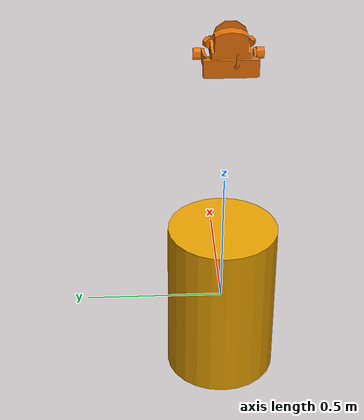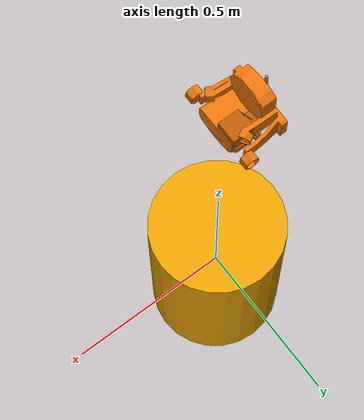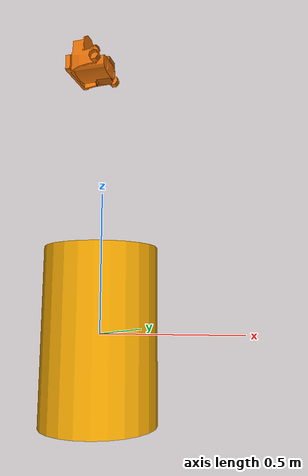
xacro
<?xml version="1.0"?>

<robot xmlns:xacro="http://www.ros.org/wiki/xacro" name="myfirst">

  <xacro:include filename="$(find multisense_description)/urdf/multisenseSL/importable.urdf.xacro"/>

  <link name="base_link">
    <visual>
      <geometry>
        <cylinder length="0.6" radius="0.2"/>
      </geometry>
    </visual>
  </link>

  <xacro:importable_multisenseSL name="multisense" parent="base_link">
    <origin xyz="0 0 1" rpy="0 0 0"/>
  </xacro:importable_multisenseSL>

</robot>

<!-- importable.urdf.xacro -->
<robot xmlns:xacro="http://ros.org/wiki/xacro">
  <xacro:include filename="$(find multisense_description)/urdf/multisenseSL/multisenseSL.urdf.xacro"/>

  <xacro:macro name="importable_multisenseSL" params="parent name *origin">

    <!-- Joint for connection to parent -->
    <joint name="${name}_head_root_joint" type="fixed">
      <insert_block name="origin"/>
      <parent link="${parent}"/>
      <child link="${name}/head"/>
    </joint>

    <xacro:multisenseSL name="${name}" />

  </xacro:macro>
</robot>

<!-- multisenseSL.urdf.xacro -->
<robot xmlns:xacro="http://ros.org/wiki/xacro">
  <xacro:macro name="multisenseSL" params="name">

    <!-- Head Link Simplified Collision Mesh -->
    <link name="${name}/head">
      <inertial>
        <origin xyz="-0.075493 3.3383E-05 0.02774" rpy="0 0 0" />
        <mass value="1.4199" />
        <inertia iyy="0.0041178" ixy="-1.5797E-06" iyz="-6.8415E-07" ixx="0.0039688" ixz="-0.00089293" izz="0.0035243" />
      </inertial>
      <visual>
        <origin xyz="0 0  0" rpy="0 0 0" />
        <geometry>
            <mesh filename="package://multisense_description/meshes/head.dae" />
        </geometry>
        <material name="">
          <color rgba="0.9098 0.44314 0.031373 1" />
        </material>
      </visual>
    <collision>
      <origin xyz="-0.0503 0 -0.00195" rpy="0 0 0" />
      <geometry>
        <box size="0.1311 0.12 0.0591"/>
      </geometry>
    </collision>
    </link>

    <joint name="${name}/left_camera_optical_joint" type="continuous">
      <parent link="${name}/left_camera_optical_frame" />
      <child link="${name}/motor" />
    </joint>

    <link name="${name}/motor"/>
    <link name="${name}/spindle"/>

    <joint name="${name}/motor_joint" type="continuous">
      <parent link="${name}/motor" />
      <child link="${name}/spindle" />
      <axis xyz="0 0 1" />
    </joint>

    <joint name="${name}/spindle_joint" type="continuous">
      <parent link="${name}/spindle" />
      <child link="${name}/hokuyo_link" />
    </joint>

    <link name="${name}/hokuyo_link">
      <inertial>
        <origin xyz="0.012428 0.0004084 -0.0041835" rpy="0 0 0" />
        <mass value="0.057664" />
        <inertia iyy="4.2412E-05" ixy="4.9927E-08" iyz="-9.8165E-09" ixx="3.7174E-05" ixz="1.1015E-05" izz="4.167E-05" />
      </inertial>
      <visual>
        <origin xyz="-.03 -.1 0" rpy="-1.9179632679 -1.57079632679 0" />
        <geometry>
          <mesh filename="package://multisense_description/meshes/head_camera.dae" />
        </geometry>
        <material name="">
          <color rgba="0.72941 0.35686 0.023529 1" />
        </material>
      </visual>
    <collision>
      <origin xyz="0.03 0 0.0235" rpy="0 0 0" />
      <geometry>
        <cylinder radius="0.024425" length="0.047"/>
      </geometry>
    </collision>
    </link>

    <link name="${name}/head_hokuyo_frame"/>
    <joint name="${name}/head_hokuyo_frame_joint" type="fixed">
      <origin xyz="0 0 0" rpy="-1.57079632679 -1.57079632679 0.0" />
      <parent link="${name}/hokuyo_link" />
      <child link="${name}/head_hokuyo_frame"/>
    </joint>

    <!-- Stereo Camera -->
    <joint name="${name}/left_camera_frame_joint" type="fixed">
      <!-- optical frame collocated with tilting DOF -->
      <origin xyz="0.0 0.035 -0.002"/>
      <parent link="${name}/head"/>
      <child link="${name}/left_camera_frame"/>
    </joint>
    <link name="${name}/left_camera_frame">
      <inertial>
        <mass value="0.1" />
        <origin xyz="0 0 0" />
        <inertia ixx="0.001"  ixy="0.0"  ixz="0.0" iyy="0.001"  iyz="0.0" izz="0.001" />
      </inertial>
    </link>
    <joint name="${name}/left_camera_optical_frame_joint" type="fixed">
      <origin xyz="0 0 0" rpy="-1.57079632679 0.0 -1.57079632679" />
      <parent link="${name}/left_camera_frame" />
      <child link="${name}/left_camera_optical_frame"/>
    </joint>
    <link name="${name}/left_camera_optical_frame"/>

    <joint name="${name}/right_camera_frame_joint" type="fixed">
      <origin xyz="0.0 -0.035 -0.002"/>
      <parent link="${name}/head"/>
      <child link="${name}/right_camera_frame"/>
    </joint>
    <link name="${name}/right_camera_frame">
      <inertial>
        <mass value="0.1" />
        <origin xyz="0 0 0" />
        <inertia ixx="0.001"  ixy="0.0"  ixz="0.0" iyy="0.001"  iyz="0.0" izz="0.001" />
      </inertial>
    </link>
    <joint name="${name}/right_camera_optical_frame_joint" type="fixed">
      <origin xyz="0 0 0" rpy="-1.5708 0.0 -1.5708" />
      <parent link="${name}/right_camera_frame" />
      <child link="${name}/right_camera_optical_frame"/>
    </joint>
    <link name="${name}/right_camera_optical_frame"/>

    <joint name="${name}/center_top_led_frame_joint" type="fixed">
      <origin xyz="0.01125 0.0 0.0105"/>
      <parent link="${name}/head"/>
      <child link="${name}/center_top_led_frame"/>
    </joint>
    <link name="${name}/center_top_led_frame">
      <inertial>
        <mass value="0.1"/>
        <origin xyz="0 0 0"/>
        <inertia ixx="0.001" ixy="0.0" ixz="0.0" iyy="0.001" iyz="0.0" izz="0.001"/>
      </inertial>
    </link>
    <joint name="${name}/center_bottom_led_frame_joint" type="fixed">
      <origin xyz="0.01125 0.0 -0.0155"/>
      <parent link="${name}/head"/>
      <child link="${name}/center_bottom_led_frame"/>
    </joint>
    <link name="${name}/center_bottom_led_frame">
      <inertial>
        <mass value="0.1"/>
        <origin xyz="0 0 0"/>
        <inertia ixx="0.001" ixy="0.0" ixz="0.0" iyy="0.001" iyz="0.0" izz="0.001"/>
      </inertial>
    </link>
    <joint name="${name}/left_led_frame_joint" type="fixed">
      <origin xyz="-0.01443 0.07452 0.050346" rpy="0 -0.15 0.53"/>
      <parent link="${name}/head"/>
      <child link="${name}/left_led_frame"/>
    </joint>
    <link name="${name}/left_led_frame">
      <inertial>
        <mass value="0.1"/>
        <origin xyz="0 0 0"/>
        <inertia ixx="0.001" ixy="0.0" ixz="0.0" iyy="0.001" iyz="0.0" izz="0.001"/>
      </inertial>
    </link>
    <joint name="${name}/right_led_frame_joint" type="fixed">
      <origin xyz="-0.01443 -0.07452 0.050346" rpy="0 -0.15 -0.53"/>
      <parent link="${name}/head"/>
      <child link="${name}/right_led_frame"/>
    </joint>
    <link name="${name}/right_led_frame">
      <inertial>
        <mass value="0.1"/>
        <origin xyz="0 0 0"/>
        <inertia ixx="0.001" ixy="0.0" ixz="0.0" iyy="0.001" iyz="0.0" izz="0.001"/>
      </inertial>
    </link>

    <!-- IMU Frames, Mag/Accel and Gyro -->
    <!-- Include transfrom to the left_camera_frame (shift in -.035mm in X and -.002mm in Z) -->

    <link name="${name}/accel"/>
    <joint name="${name}/accel_joint" type="fixed">
      <origin xyz="-.0475 .0302 -.00275" rpy="0 1.5707 0"/>
      <parent link="${name}/head"/>
      <child link="${name}/accel"/>
    </joint>

    <link name="${name}/mag"/>
    <joint name="${name}/mag_joint" type="fixed">
      <origin xyz="-.0475 .0302 -.00275" rpy="0 1.5707 0"/>
      <parent link="${name}/head"/>
      <child link="${name}/mag"/>
    </joint>

    <link name="${name}/gyro"/>
    <joint name="${name}/gyro_joint" type="fixed">
      <origin xyz="-.0476 .0388 -.00075" rpy="1.5707 3.14159 1.5707 "/>
      <parent link="${name}/head"/>
      <child link="${name}/gyro"/>
    </joint>

  </xacro:macro>
</robot>
